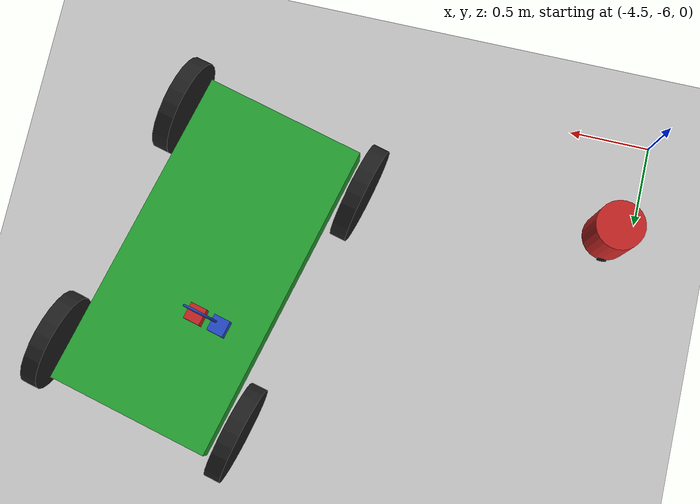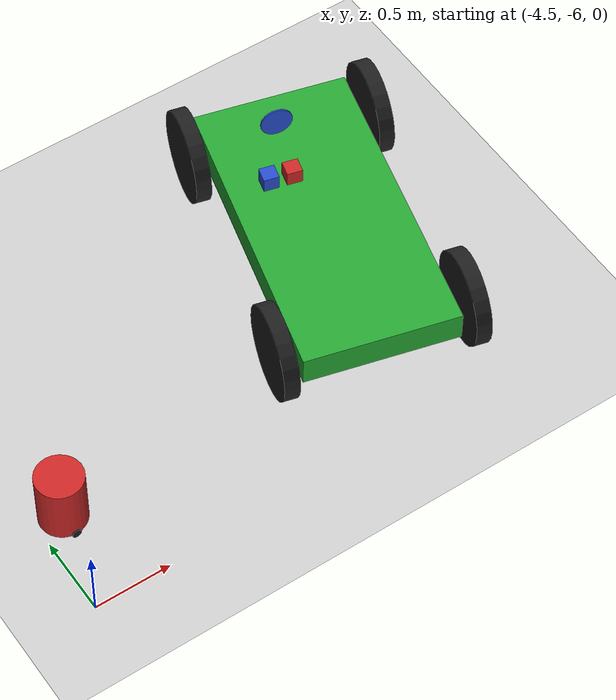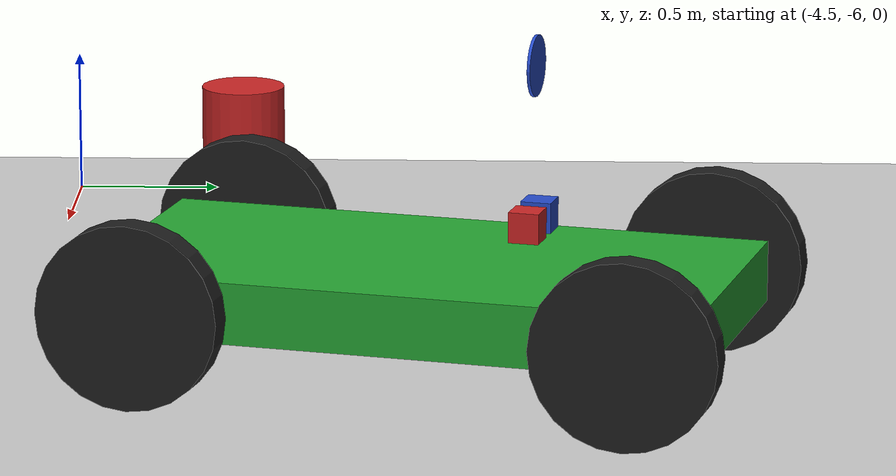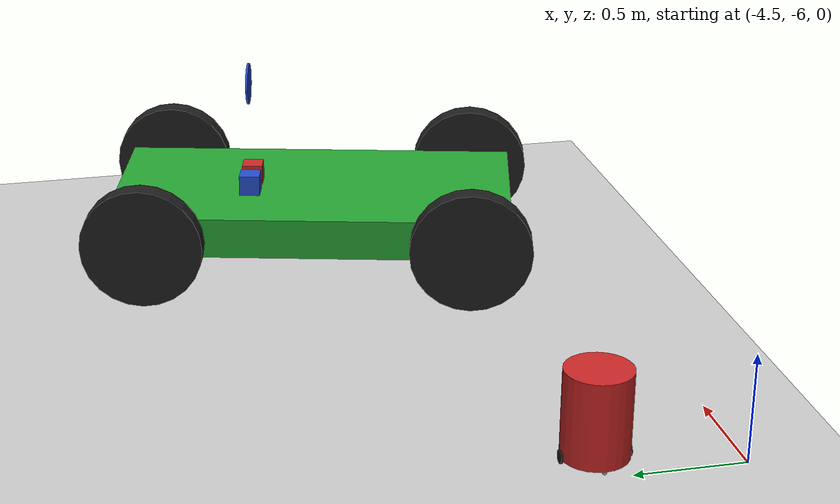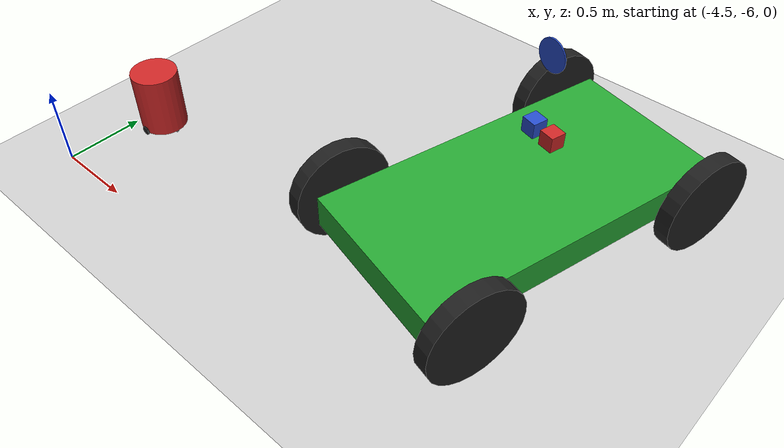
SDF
<sdf version="1.6">
 <world name="default">
  <model name="ground_plane">
   <static>1</static>
   <link name="ground_link">
    <collision name="collision">
     <geometry><plane><normal>0 0 1</normal><size>100 100</size></plane></geometry>
     <surface><friction><ode><mu>100</mu><mu2>50</mu2></ode></friction></surface>
    </collision>
    <visual name="visual">
     <cast_shadows>0</cast_shadows>
     <geometry><plane><normal>0 0 1</normal><size>100 100</size></plane></geometry>
     <material>
      <script><uri>file://media/materials/scripts/gazebo.material</uri><name>Gazebo/Grey</name></script>
     </material>
    </visual>
   </link>
  </model>
  <model name="car">
   <link name="chassis">
    <pose>0 0 0.3 0 -0 0</pose>
    <collision name="collision"><geometry><box><size>2 1 0.2</size></box></geometry></collision>
    <visual name="visual">
     <geometry><box><size>2 1 0.2</size></box></geometry>
     <material>
      <script><uri>file://media/materials/scripts/gazebo.material</uri><name>Gazebo/Green</name></script>
     </material>
    </visual>
    <inertial>
     <inertia><ixx>1</ixx><ixy>0</ixy><ixz>0</ixz><iyy>1</iyy><iyz>0</iyz><izz>1</izz></inertia>
     <mass>1</mass>
    </inertial>
   </link>
   <link name="front_left_wheel">
    <pose>0.8 0.6 0.3 -0 1.5707 1.5707</pose>
    <collision name="collision">
     <geometry><cylinder><radius>0.3</radius><length>0.1</length></cylinder></geometry>
    </collision>
    <visual name="visual">
     <geometry><cylinder><radius>0.3</radius><length>0.1</length></cylinder></geometry>
     <material>
      <script><uri>file://media/materials/scripts/gazebo.material</uri><name>Gazebo/Black</name></script>
     </material>
    </visual>
    <inertial>
     <inertia><ixx>1</ixx><ixy>0</ixy><ixz>0</ixz><iyy>1</iyy><iyz>0</iyz><izz>1</izz></inertia>
     <mass>1</mass>
    </inertial>
   </link>
   <link name="front_right_wheel">
    <pose>0.8 -0.6 0.3 -0 1.5707 1.5707</pose>
    <collision name="collision">
     <geometry><cylinder><radius>0.3</radius><length>0.1</length></cylinder></geometry>
    </collision>
    <visual name="visual">
     <geometry><cylinder><radius>0.3</radius><length>0.1</length></cylinder></geometry>
     <material>
      <script><uri>file://media/materials/scripts/gazebo.material</uri><name>Gazebo/Black</name></script>
     </material>
    </visual>
    <inertial>
     <inertia><ixx>1</ixx><ixy>0</ixy><ixz>0</ixz><iyy>1</iyy><iyz>0</iyz><izz>1</izz></inertia>
     <mass>1</mass>
    </inertial>
   </link>
   <link name="back_right_wheel">
    <pose>-0.8 -0.6 0.3 -0 1.5707 1.5707</pose>
    <collision name="collision">
     <geometry><cylinder><radius>0.3</radius><length>0.1</length></cylinder></geometry>
    </collision>
    <visual name="visual">
     <geometry><cylinder><radius>0.3</radius><length>0.1</length></cylinder></geometry>
     <material>
      <script><uri>file://media/materials/scripts/gazebo.material</uri><name>Gazebo/Black</name></script>
     </material>
    </visual>
    <inertial>
     <inertia><ixx>1</ixx><ixy>0</ixy><ixz>0</ixz><iyy>1</iyy><iyz>0</iyz><izz>1</izz></inertia>
     <mass>1</mass>
    </inertial>
   </link>
   <link name="back_left_wheel">
    <pose>-0.8 0.6 0.3 -0 1.5707 1.5707</pose>
    <collision name="collision">
     <geometry><cylinder><radius>0.3</radius><length>0.1</length></cylinder></geometry>
    </collision>
    <visual name="visual">
     <geometry><cylinder><radius>0.3</radius><length>0.1</length></cylinder></geometry>
     <material>
      <script><uri>file://media/materials/scripts/gazebo.material</uri><name>Gazebo/Black</name></script>
     </material>
    </visual>
    <inertial>
     <inertia><ixx>1</ixx><ixy>0</ixy><ixz>0</ixz><iyy>1</iyy><iyz>0</iyz><izz>1</izz></inertia>
     <mass>1</mass>
    </inertial>
   </link>
   <link name="gas_pedal">
    <pose>0.3 0.1 0.5 0 -0 0</pose>
    <collision name="collision"><geometry><box><size>0.1 0.1 0.1</size></box></geometry></collision>
    <visual name="visual">
     <geometry><box><size>0.1 0.1 0.1</size></box></geometry>
     <material>
      <script><uri>file://media/materials/scripts/gazebo.material</uri><name>Gazebo/Red</name></script>
     </material>
    </visual>
    <inertial>
     <inertia><ixx>1</ixx><ixy>0</ixy><ixz>0</ixz><iyy>1</iyy><iyz>0</iyz><izz>1</izz></inertia>
     <mass>1</mass>
    </inertial>
   </link>
   <link name="brake_pedal">
    <pose>0.3 0.25 0.5 0 -0 0</pose>
    <collision name="collision"><geometry><box><size>0.1 0.1 0.1</size></box></geometry></collision>
    <visual name="visual">
     <geometry><box><size>0.1 0.1 0.1</size></box></geometry>
     <material>
      <script><uri>file://media/materials/scripts/gazebo.material</uri><name>Gazebo/Blue</name></script>
     </material>
    </visual>
    <inertial>
     <inertia><ixx>1</ixx><ixy>0</ixy><ixz>0</ixz><iyy>1</iyy><iyz>0</iyz><izz>1</izz></inertia>
     <mass>1</mass>
    </inertial>
   </link>
   <link name="steering_wheel">
    <pose>0.3 0.2 1 0 1.5707 0</pose>
    <collision name="collision">
     <geometry><cylinder><radius>0.1</radius><length>0.01</length></cylinder></geometry>
    </collision>
    <visual name="visual">
     <geometry><cylinder><radius>0.1</radius><length>0.01</length></cylinder></geometry>
     <material>
      <script><uri>file://media/materials/scripts/gazebo.material</uri><name>Gazebo/Blue</name></script>
     </material>
    </visual>
    <inertial>
     <inertia><ixx>1</ixx><ixy>0</ixy><ixz>0</ixz><iyy>1</iyy><iyz>0</iyz><izz>1</izz></inertia>
     <mass>1</mass>
    </inertial>
   </link>
   <joint name="gas_joint" type="prismatic">
    <parent>chassis</parent>
    <child>gas_pedal</child>
    <axis>
     <xyz>1 0 0</xyz>
     <limit><lower>0</lower><upper>0.2</upper></limit>
     <use_parent_model_frame>1</use_parent_model_frame>
     <dynamics><spring_reference>0</spring_reference><spring_stiffness>0</spring_stiffness></dynamics>
    </axis>
   </joint>
   <joint name="brake_joint" type="prismatic">
    <parent>chassis</parent>
    <child>brake_pedal</child>
    <axis>
     <xyz>1 0 0</xyz>
     <limit><lower>0</lower><upper>0.2</upper></limit>
     <use_parent_model_frame>1</use_parent_model_frame>
     <dynamics><spring_reference>0</spring_reference><spring_stiffness>0</spring_stiffness></dynamics>
    </axis>
   </joint>
   <joint name="steering_joint" type="revolute">
    <parent>chassis</parent>
    <child>steering_wheel</child>
    <axis>
     <xyz>1 0 0</xyz>
     <limit><lower>-7.853</lower><upper>7.853</upper></limit>
     <use_parent_model_frame>1</use_parent_model_frame>
     <dynamics><spring_reference>0</spring_reference><spring_stiffness>0</spring_stiffness></dynamics>
    </axis>
   </joint>
   <joint name="front_left_joint" type="revolute2">
    <parent>chassis</parent>
    <child>front_left_wheel</child>
    <axis>
     <xyz>0 0 1</xyz>
     <limit><lower>-0.00169466</lower><upper>-0.00169466</upper></limit>
     <use_parent_model_frame>1</use_parent_model_frame>
     <dynamics><spring_reference>0</spring_reference><spring_stiffness>0</spring_stiffness></dynamics>
    </axis>
    <axis2>
     <xyz>0 1 0</xyz>
     <use_parent_model_frame>1</use_parent_model_frame>
     <dynamics><spring_reference>0</spring_reference><spring_stiffness>0</spring_stiffness></dynamics>
    </axis2>
    <physics><ode><limit><cfm>0</cfm><erp>0.9</erp></limit></ode></physics>
   </joint>
   <joint name="front_right_joint" type="revolute2">
    <parent>chassis</parent>
    <child>front_right_wheel</child>
    <axis>
     <xyz>0 0 1</xyz>
     <limit><lower>-0.00169466</lower><upper>-0.00169466</upper></limit>
     <use_parent_model_frame>1</use_parent_model_frame>
     <dynamics><spring_reference>0</spring_reference><spring_stiffness>0</spring_stiffness></dynamics>
    </axis>
    <axis2>
     <xyz>0 1 0</xyz>
     <use_parent_model_frame>1</use_parent_model_frame>
     <dynamics><spring_reference>0</spring_reference><spring_stiffness>0</spring_stiffness></dynamics>
    </axis2>
    <physics><ode><limit><cfm>0</cfm><erp>0.9</erp></limit></ode></physics>
   </joint>
   <joint name="back_right_joint" type="revolute2">
    <parent>chassis</parent>
    <child>back_right_wheel</child>
    <axis>
     <xyz>0 0 1</xyz>
     <limit><lower>0</lower><upper>0</upper></limit>
     <use_parent_model_frame>1</use_parent_model_frame>
     <dynamics><spring_reference>0</spring_reference><spring_stiffness>0</spring_stiffness></dynamics>
    </axis>
    <axis2>
     <xyz>0 1 0</xyz>
     <use_parent_model_frame>1</use_parent_model_frame>
     <dynamics><spring_reference>0</spring_reference><spring_stiffness>0</spring_stiffness></dynamics>
    </axis2>
    <physics><ode><limit><cfm>0</cfm><erp>0.9</erp></limit></ode></physics>
   </joint>
   <joint name="back_left_joint" type="revolute2">
    <parent>chassis</parent>
    <child>back_left_wheel</child>
    <axis>
     <xyz>0 0 1</xyz>
     <limit><lower>0</lower><upper>0</upper></limit>
     <use_parent_model_frame>1</use_parent_model_frame>
     <dynamics><spring_reference>0</spring_reference><spring_stiffness>0</spring_stiffness></dynamics>
    </axis>
    <axis2>
     <xyz>0 1 0</xyz>
     <use_parent_model_frame>1</use_parent_model_frame>
     <dynamics><spring_reference>0</spring_reference><spring_stiffness>0</spring_stiffness></dynamics>
    </axis2>
    <physics><ode><limit><cfm>0</cfm><erp>0.9</erp></limit></ode></physics>
   </joint>
   <plugin name="vehicle" filename="libVehiclePlugin.so">
    <front_left>front_left_joint</front_left>
    <front_right>front_right_joint</front_right>
    <back_left>back_left_joint</back_left>
    <back_right>back_right_joint</back_right>
    <gas>gas_joint</gas>
    <brake>brake_joint</brake>
    <steering>steering_joint</steering>
    <front_power>10</front_power>
    <rear_power>10</rear_power>
    <tire_angle_range>0.5</tire_angle_range>
    <max_speed>10</max_speed>
    <aero_load>0.1</aero_load>
   </plugin>
   <pose>-2.00951 -4.63852 -0.002616 -0.000273 0.000908 1.32056</pose>
  </model>
  <model name="CleanerBot_4">
   <link name="link_0">
    <inertial>
     <mass>1</mass>
     <inertia><ixx>0.145833</ixx><ixy>0</ixy><ixz>0</ixz><iyy>0.145833</iyy><iyz>0</iyz><izz>0.125</izz></inertia>
    </inertial>
    <pose>0 0 0.2001 0 -0 0</pose>
    <visual name="visual">
     <geometry><cylinder><radius>0.15</radius><length>0.4</length></cylinder></geometry>
     <material>
      <lighting>1</lighting>
      <script><uri>file://media/materials/scripts/gazebo.material</uri><name>Gazebo/Red</name></script>
      <shader type="pixel"><normal_map>__default__</normal_map></shader>
      <ambient>0.8 0 0 1</ambient>
      <diffuse>0.7 0.7 0.7 1</diffuse>
      <specular>0.01 0.01 0.01 1</specular>
      <emissive>0 0 0 1</emissive>
     </material>
    </visual>
    <collision name="collision">
     <geometry><cylinder><radius>0.15</radius><length>0.4</length></cylinder></geometry>
     <surface>
      <friction>
       <ode><mu>1</mu><mu2>1</mu2><fdir1>0 0 0</fdir1><slip1>0</slip1><slip2>0</slip2></ode>
       <torsional>
        <coefficient>1</coefficient>
        <patch_radius>0</patch_radius>
        <surface_radius>0</surface_radius>
        <use_patch_radius>1</use_patch_radius>
        <ode><slip>0</slip></ode>
       </torsional>
      </friction>
      <bounce><restitution_coefficient>0</restitution_coefficient><threshold>1e+06</threshold></bounce>
      <contact>
       <collide_without_contact>0</collide_without_contact>
       <collide_without_contact_bitmask>1</collide_without_contact_bitmask>
       <collide_bitmask>1</collide_bitmask>
       <ode>
        <soft_cfm>0</soft_cfm>
        <soft_erp>0.2</soft_erp>
        <kp>1e+13</kp>
        <kd>1</kd>
        <max_vel>0.01</max_vel>
        <min_depth>0</min_depth>
       </ode>
       <bullet>
        <split_impulse>1</split_impulse>
        <split_impulse_penetration_threshold>-0.01</split_impulse_penetration_threshold>
        <soft_cfm>0</soft_cfm>
        <soft_erp>0.2</soft_erp>
        <kp>1e+13</kp>
        <kd>1</kd>
       </bullet>
      </contact>
     </surface>
    </collision>
   </link>
   <link name="link_1">
    <inertial>
     <mass>1</mass>
     <inertia><ixx>0.145833</ixx><ixy>0</ixy><ixz>0</ixz><iyy>0.145833</iyy><iyz>0</iyz><izz>0.125</izz></inertia>
    </inertial>
    <pose>0 0.15 0.007 1.5707 -0 0</pose>
    <visual name="visual">
     <geometry><cylinder><radius>0.03</radius><length>0.01</length></cylinder></geometry>
     <material>
      <lighting>1</lighting>
      <script><uri>file://media/materials/scripts/gazebo.material</uri><name>Gazebo/Black</name></script>
      <shader type="pixel"><normal_map>__default__</normal_map></shader>
      <ambient>0 0 0.8 1</ambient>
      <diffuse>0.7 0.7 0.7 1</diffuse>
      <specular>0.01 0.01 0.01 1</specular>
      <emissive>0 0 0 1</emissive>
     </material>
    </visual>
    <collision name="collision">
     <geometry><cylinder><radius>0.03</radius><length>0.01</length></cylinder></geometry>
     <surface>
      <friction>
       <ode><mu>1</mu><mu2>1</mu2><fdir1>0 0 0</fdir1><slip1>0</slip1><slip2>0</slip2></ode>
       <torsional>
        <coefficient>1</coefficient>
        <patch_radius>0</patch_radius>
        <surface_radius>0</surface_radius>
        <use_patch_radius>1</use_patch_radius>
        <ode><slip>0</slip></ode>
       </torsional>
      </friction>
      <bounce><restitution_coefficient>0</restitution_coefficient><threshold>1e+06</threshold></bounce>
      <contact>
       <collide_without_contact>0</collide_without_contact>
       <collide_without_contact_bitmask>1</collide_without_contact_bitmask>
       <collide_bitmask>1</collide_bitmask>
       <ode>
        <soft_cfm>0</soft_cfm>
        <soft_erp>0.2</soft_erp>
        <kp>1e+13</kp>
        <kd>1</kd>
        <max_vel>0.01</max_vel>
        <min_depth>0</min_depth>
       </ode>
       <bullet>
        <split_impulse>1</split_impulse>
        <split_impulse_penetration_threshold>-0.01</split_impulse_penetration_threshold>
        <soft_cfm>0</soft_cfm>
        <soft_erp>0.2</soft_erp>
        <kp>1e+13</kp>
        <kd>1</kd>
       </bullet>
      </contact>
     </surface>
    </collision>
   </link>
   <link name="link_1_clone">
    <inertial>
     <mass>1</mass>
     <inertia><ixx>0.145833</ixx><ixy>0</ixy><ixz>0</ixz><iyy>0.145833</iyy><iyz>0</iyz><izz>0.125</izz></inertia>
    </inertial>
    <pose>0 -0.15 0.007 1.5707 -0 0</pose>
    <visual name="visual">
     <geometry><cylinder><radius>0.03</radius><length>0.01</length></cylinder></geometry>
     <material>
      <lighting>1</lighting>
      <script><uri>file://media/materials/scripts/gazebo.material</uri><name>Gazebo/Black</name></script>
      <shader type="pixel"><normal_map>__default__</normal_map></shader>
      <ambient>0 0 0.8 1</ambient>
      <diffuse>0.7 0.7 0.7 1</diffuse>
      <specular>0.01 0.01 0.01 1</specular>
      <emissive>0 0 0 1</emissive>
     </material>
    </visual>
    <collision name="collision">
     <geometry><cylinder><radius>0.03</radius><length>0.01</length></cylinder></geometry>
     <surface>
      <friction>
       <ode><mu>1</mu><mu2>1</mu2><fdir1>0 0 0</fdir1><slip1>0</slip1><slip2>0</slip2></ode>
       <torsional>
        <coefficient>1</coefficient>
        <patch_radius>0</patch_radius>
        <surface_radius>0</surface_radius>
        <use_patch_radius>1</use_patch_radius>
        <ode><slip>0</slip></ode>
       </torsional>
      </friction>
      <bounce><restitution_coefficient>0</restitution_coefficient><threshold>1e+06</threshold></bounce>
      <contact>
       <collide_without_contact>0</collide_without_contact>
       <collide_without_contact_bitmask>1</collide_without_contact_bitmask>
       <collide_bitmask>1</collide_bitmask>
       <ode>
        <soft_cfm>0</soft_cfm>
        <soft_erp>0.2</soft_erp>
        <kp>1e+13</kp>
        <kd>1</kd>
        <max_vel>0.01</max_vel>
        <min_depth>0</min_depth>
       </ode>
       <bullet>
        <split_impulse>1</split_impulse>
        <split_impulse_penetration_threshold>-0.01</split_impulse_penetration_threshold>
        <soft_cfm>0</soft_cfm>
        <soft_erp>0.2</soft_erp>
        <kp>1e+13</kp>
        <kd>1</kd>
       </bullet>
      </contact>
     </surface>
    </collision>
   </link>
   <link name="link_2">
    <inertial>
     <mass>1</mass>
     <inertia><ixx>0.1</ixx><ixy>0</ixy><ixz>0</ixz><iyy>0.1</iyy><iyz>0</iyz><izz>0.1</izz></inertia>
    </inertial>
    <pose>0.13 0 -0.013 0 -0 0</pose>
    <visual name="visual">
     <geometry><sphere><radius>0.01</radius></sphere></geometry>
     <material>
      <lighting>1</lighting>
      <script><uri>file://media/materials/scripts/gazebo.material</uri><name>Gazebo/Grey</name></script>
      <shader type="pixel"><normal_map>__default__</normal_map></shader>
      <ambient>0.3 0.3 0.3 1</ambient>
      <diffuse>0.7 0.7 0.7 1</diffuse>
      <specular>0.01 0.01 0.01 1</specular>
      <emissive>0 0 0 1</emissive>
     </material>
    </visual>
    <collision name="collision">
     <geometry><sphere><radius>0.01</radius></sphere></geometry>
     <surface>
      <friction>
       <ode><mu>0</mu><mu2>0</mu2><fdir1>0 0 0</fdir1><slip1>0</slip1><slip2>0</slip2></ode>
       <torsional>
        <coefficient>1</coefficient>
        <patch_radius>0</patch_radius>
        <surface_radius>0</surface_radius>
        <use_patch_radius>1</use_patch_radius>
        <ode><slip>0</slip></ode>
       </torsional>
      </friction>
      <bounce><restitution_coefficient>0</restitution_coefficient><threshold>1e+06</threshold></bounce>
      <contact>
       <collide_without_contact>0</collide_without_contact>
       <collide_without_contact_bitmask>1</collide_without_contact_bitmask>
       <collide_bitmask>1</collide_bitmask>
       <ode>
        <soft_cfm>0</soft_cfm>
        <soft_erp>0.2</soft_erp>
        <kp>1e+13</kp>
        <kd>1</kd>
        <max_vel>0.01</max_vel>
        <min_depth>0</min_depth>
       </ode>
       <bullet>
        <split_impulse>1</split_impulse>
        <split_impulse_penetration_threshold>-0.01</split_impulse_penetration_threshold>
        <soft_cfm>0</soft_cfm>
        <soft_erp>0.2</soft_erp>
        <kp>1e+13</kp>
        <kd>1</kd>
       </bullet>
      </contact>
     </surface>
    </collision>
   </link>
   <link name="link_2_clone">
    <inertial>
     <mass>1</mass>
     <inertia><ixx>0.1</ixx><ixy>0</ixy><ixz>0</ixz><iyy>0.1</iyy><iyz>0</iyz><izz>0.1</izz></inertia>
    </inertial>
    <pose>-0.13 0 -0.013 0 -0 0</pose>
    <visual name="visual">
     <geometry><sphere><radius>0.01</radius></sphere></geometry>
     <material>
      <lighting>1</lighting>
      <script><uri>file://media/materials/scripts/gazebo.material</uri><name>Gazebo/Grey</name></script>
      <shader type="pixel"><normal_map>__default__</normal_map></shader>
      <ambient>0.3 0.3 0.3 1</ambient>
      <diffuse>0.7 0.7 0.7 1</diffuse>
      <specular>0.01 0.01 0.01 1</specular>
      <emissive>0 0 0 1</emissive>
     </material>
    </visual>
    <collision name="collision">
     <geometry><sphere><radius>0.01</radius></sphere></geometry>
     <surface>
      <friction>
       <ode><mu>0</mu><mu2>0</mu2><fdir1>0 0 0</fdir1><slip1>0</slip1><slip2>0</slip2></ode>
       <torsional>
        <coefficient>1</coefficient>
        <patch_radius>0</patch_radius>
        <surface_radius>0</surface_radius>
        <use_patch_radius>1</use_patch_radius>
        <ode><slip>0</slip></ode>
       </torsional>
      </friction>
      <bounce><restitution_coefficient>0</restitution_coefficient><threshold>1e+06</threshold></bounce>
      <contact>
       <collide_without_contact>0</collide_without_contact>
       <collide_without_contact_bitmask>1</collide_without_contact_bitmask>
       <collide_bitmask>1</collide_bitmask>
       <ode>
        <soft_cfm>0</soft_cfm>
        <soft_erp>0.2</soft_erp>
        <kp>1e+13</kp>
        <kd>1</kd>
        <max_vel>0.01</max_vel>
        <min_depth>0</min_depth>
       </ode>
       <bullet>
        <split_impulse>1</split_impulse>
        <split_impulse_penetration_threshold>-0.01</split_impulse_penetration_threshold>
        <soft_cfm>0</soft_cfm>
        <soft_erp>0.2</soft_erp>
        <kp>1e+13</kp>
        <kd>1</kd>
       </bullet>
      </contact>
     </surface>
    </collision>
   </link>
   <joint name="link_0_JOINT_1" type="revolute">
    <parent>link_0</parent>
    <child>link_1_clone</child>
    <axis>
     <xyz>0 0 1</xyz>
     <limit>
      <lower>-1.79769e+308</lower>
      <upper>1.79769e+308</upper>
      <effort>-1</effort>
      <velocity>-1</velocity>
     </limit>
     <dynamics>
      <spring_reference>0</spring_reference>
      <spring_stiffness>0</spring_stiffness>
      <damping>0</damping>
     </dynamics>
     <use_parent_model_frame>0</use_parent_model_frame>
    </axis>
    <physics>
     <ode><limit><cfm>0</cfm><erp>0.2</erp></limit><suspension><cfm>0</cfm><erp>0.2</erp></suspension></ode>
    </physics>
   </joint>
   <joint name="link_0_JOINT_2" type="revolute">
    <parent>link_0</parent>
    <child>link_1</child>
    <axis>
     <xyz>0 0 1</xyz>
     <limit>
      <lower>-1.79769e+308</lower>
      <upper>1.79769e+308</upper>
      <effort>-1</effort>
      <velocity>-1</velocity>
     </limit>
     <dynamics>
      <spring_reference>0</spring_reference>
      <spring_stiffness>0</spring_stiffness>
      <damping>0</damping>
     </dynamics>
     <use_parent_model_frame>0</use_parent_model_frame>
    </axis>
    <physics>
     <ode><limit><cfm>0</cfm><erp>0.2</erp></limit><suspension><cfm>0</cfm><erp>0.2</erp></suspension></ode>
    </physics>
   </joint>
   <joint name="link_0_JOINT_4" type="fixed">
    <parent>link_0</parent>
    <child>link_2</child>
    <physics>
     <ode><limit><cfm>0</cfm><erp>0.2</erp></limit><suspension><cfm>0</cfm><erp>0.2</erp></suspension></ode>
    </physics>
   </joint>
   <joint name="link_0_JOINT_5" type="fixed">
    <parent>link_0</parent>
    <child>link_2_clone</child>
    <physics>
     <ode><limit><cfm>0</cfm><erp>0.2</erp></limit><suspension><cfm>0</cfm><erp>0.2</erp></suspension></ode>
    </physics>
   </joint>
   <static>0</static>
   <pose>-4.33719 -5.38708 0.023 -1e-06 -6e-06 -0.003368</pose>
  </model>
 </world>
</sdf>
